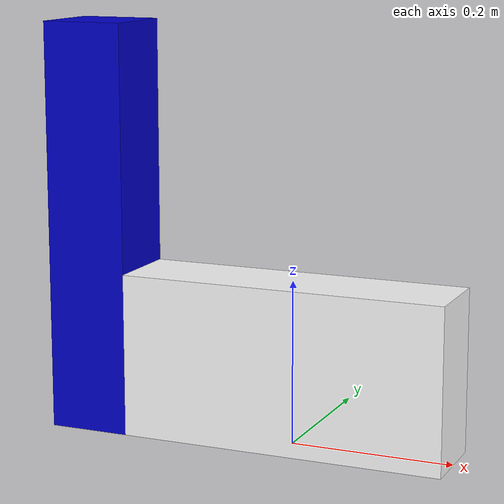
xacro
<?xml version="1.0"?>
<robot xmlns:xacro="http://www.ros.org/wiki/xacro" name="hk1d">

    <!-- Enable setting arguments from the launch file -->
    <xacro:arg name="use_sim" default="false" />
    <xacro:arg name="use_fake_hardware" default="true" />
    <xacro:arg name="prefix" default="" />
    <xacro:arg name="namespace" default="/" />
    <xacro:arg name="command_interface" default="force" />

    <xacro:arg name="description_package" default="hk1d_description" />
    <xacro:arg name="runtime_config_package" default="hk1d_bringup" />
    <xacro:arg name="controllers_file" default="hk1d_controllers.yaml" />

    <xacro:property name="description_package" value="$(arg description_package)"/>

    <!-- Declare world frame -->
    <link name="world"/>
    <gazebo reference="world">
        <static>true</static>
    </gazebo>

    <!-- Import hk1d urdf file -->
    <xacro:include filename="$(find ${description_package})/urdf/hk1d.urdf.xacro"/>

    <xacro:hk1d_urdf parent="world" prefix="$(arg prefix)">
        <origin xyz="0 0 0" rpy="0 0 0"/>
    </xacro:hk1d_urdf>

    <!-- Add ros2_control tags -->
    <xacro:include filename="$(find ${description_package})/ros2_control/hk1d.r2c_hardware.xacro" />
    <xacro:kk1d_r2c_hardware
        prefix="$(arg prefix)"
        use_sim="$(arg use_sim)"
        use_fake_hardware="$(arg use_fake_hardware)"
        command_interface="$(arg command_interface)"
        control_freq="200"
        runtime_config_package="$(arg runtime_config_package)"
    />

    <!-- Add gazebo tags -->
    <xacro:if value="$(arg use_sim)">
        <xacro:include filename="$(find ${description_package})/gazebo/hk1d.gazebo.xacro"/>
        <xacro:iiwa_gazebo
            prefix="$(arg prefix)"
            namespace="$(arg namespace)"
            runtime_config_package="$(arg runtime_config_package)"
            controllers_file="$(arg controllers_file)"
        />
    </xacro:if>
</robot>

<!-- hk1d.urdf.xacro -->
<robot xmlns:xacro="http://www.ros.org/wiki/xacro">

  <xacro:macro name="hk1d_urdf" params="parent prefix *origin">

    <!-- Color scheme -->
    <xacro:property name="color_base" value="1.0 1.0 1.0 1.0" />
    <xacro:property name="color_link_1" value="0.0 0.0 0.8 1.0" />
    <xacro:property name="color_ee_sphere" value= "1.0 0.423529411765 0.0392156862745 1.0"/>

    <xacro:macro name="material" params="name color">
        <material name="${name}">
          <color rgba="${color}"/>
        </material>
    </xacro:macro>

    <xacro:macro name="material_base">
        <xacro:material name="material_base" color="${color_base}" />
    </xacro:macro>

    <xacro:macro name="material_link_1">
        <xacro:material name="material_link_1" color="${color_link_1}" />
    </xacro:macro>

    <xacro:macro name="material_ee">
        <xacro:material name="material_ee" color="${color_ee_sphere}" />
    </xacro:macro>

    <!-- //////////////////// base link //////////////////////-->
    <link name="${prefix}hk1d_base">
        <visual>
            <origin rpy="0 0 0" xyz="0 0 0.1"/>
            <geometry>
                <box size="0.4 0.1 0.2"/>
            </geometry>
            <xacro:material_base/>
        </visual>
    </link>

    <joint name="${prefix}hk1d_root_joint" type="fixed">
        <xacro:insert_block name="origin" />
        <parent link="${parent}"/>
        <child link="${prefix}hk1d_base"/>
    </joint>

    <!-- //////////////////// links //////////////////////-->
      <link name="${prefix}link_1">
          <visual>
              <origin rpy="0 0 0" xyz="-0.25 0 0.25"/>
              <geometry>
                  <box size="0.1 0.1 0.5"/>
              </geometry>
              <xacro:material_link_1/>
          </visual>
      </link>

      <link name="${prefix}ft_sensor" />

      <link name="${prefix}interaction_point">
          <visual>
              <origin rpy="0 0 0" xyz="0 0 0"/>
              <geometry>
                  <sphere radius="0.005"/>
              </geometry>
              <xacro:material_ee/>
          </visual>
      </link>

    <!-- //////////////////// joints //////////////////////-->
      <joint name="${prefix}joint_1" type="revolute">
          <origin rpy="0 0 0" xyz="0 0 0"/>
          <parent link="${prefix}hk1d_base"/>
          <child link="${prefix}link_1"/>
          <axis xyz="1 0 0"/>
          <limit effort="120" velocity="50.0" lower="-20" upper="20" />
      </joint>

      <joint name="${prefix}link_1_to_sensor" type="fixed">
          <origin rpy="0 0 0" xyz="0.06 0 0"/>
          <parent link="${prefix}link_1"/>
          <child link="${prefix}ft_sensor"/>
      </joint>

      <joint name="${prefix}link_1_to_ee" type="fixed">
          <origin rpy="0 0 0" xyz="0.12 0 0"/>
          <parent link="${prefix}link_1"/>
          <child link="${prefix}interaction_point"/>
      </joint>
  </xacro:macro>
</robot>
